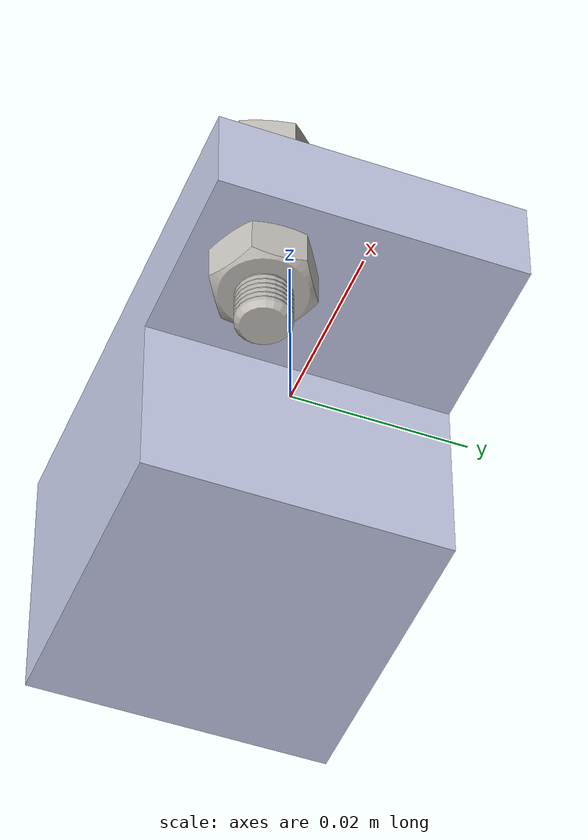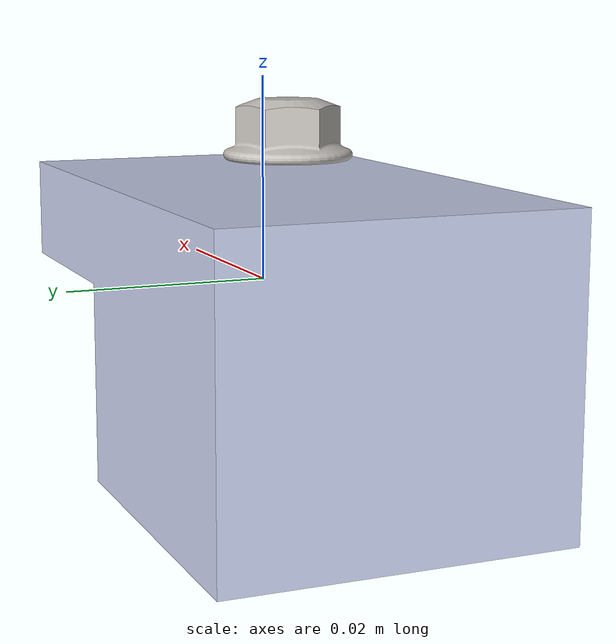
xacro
<?xml version="1.0" encoding="utf-8"?>

<robot     name="battery_pack_description"     xmlns:xacro="http://wiki.ros.org/xacro">

  <link    name="battery_pack_link">
    <inertial>
      <origin
        xyz="-0.009197 -0.0033716 0.00050198"
        rpy="0 0 0" />
      <mass
        value="0.042108" />
      <inertia
        ixx="7.2896E-06"
        ixy="-1.5922E-06"
        ixz="4.7264E-08"
        iyy="1.2235E-05"
        iyz="1.5516E-08"
        izz="1.1494E-05" />
    </inertial>
    <visual>
      <origin
        xyz="0 0 0"
        rpy="0 0 0" />
      <geometry>
                <mesh          filename="package://cai_env/meshes/battery_pack_link.stl" />
      </geometry>
      <material
        name="">
        <color
          rgba="0.79216 0.81961 0.93333 1" />
      </material>
    </visual>
    <collision>
      <origin
        xyz="0 0 0"
        rpy="0 0 0" />
      <geometry>
                <mesh          filename="package://cai_env/meshes/battery_pack_link.stl" />

      </geometry>
    </collision>
  </link>
  <gazebo reference="battery_pack_link">
        <material>Gazebo/Black</material>
   </gazebo>

<!-- luoshuan_Link -->

  <link
    name="luoshuan_Link">
    <inertial>
      <origin
        xyz="-0.00727552152690838 -2.25969003231352E-09 1.26766364072495E-09"
        rpy="0 0 0" />
      <mass
        value="0.00893667958625816" />
      <inertia
        ixx="1.00378421041833E-07"
        ixy="-1.34648613496873E-13"
        ixz="7.18049496355464E-14"
        iyy="5.56080118731557E-07"
        iyz="5.31757414764227E-14"
        izz="5.5607994905101E-07" />
    </inertial>
    <visual>
      <origin
        xyz="0 0 0"
        rpy="0 0 0" />
      <geometry>
        <mesh   filename="package://cai_env/meshes/luoshuan_Link.stl" />

      </geometry>
      <material
        name="">
        <color
          rgba="0.776470588235294 0.756862745098039 0.737254901960784 1" />
      </material>
    </visual>
    <collision>
      <origin
        xyz="0 0 0"
        rpy="0 0 0" />
      <geometry>
                <mesh   filename="package://cai_env/meshes/luoshuan_Link.stl" />
      </geometry>
    </collision>
  </link>

  <joint
    name="luoshuan"
    type="revolute">
    <origin
      xyz="0.016544 -0.0094533 0"
      rpy="1.8719 1.5708 0" />
    <parent
      link="battery_pack_link" />
    <child
      link="luoshuan_Link" />
    <axis
      xyz="1 0 0" />
    <limit
      lower="0"
      upper="0"
      effort="0"
      velocity="0" />
  </joint>

  <gazebo reference="luoshuan_Link">
        <material>Gazebo/Gray</material>
   </gazebo>

  <!-- luomu_Link -->

  <link
    name="luomu_Link">
    <inertial>
      <origin
        xyz="-5.53373788111933E-09 -3.46944695195361E-18 -0.00260060062372346"
        rpy="0 0 0" />
      <mass
        value="0.00265736664598247" />
      <inertia
        ixx="2.79753335550581E-08"
        ixy="5.00698636780671E-14"
        ixz="1.69540697008001E-14"
        iyy="2.79767293623279E-08"
        iyz="-6.75598040645383E-14"
        izz="4.46156091479721E-08" />
    </inertial>
    <visual>
      <origin
        xyz="0 0 0"
        rpy="0 0 0" />
      <geometry>
                      <mesh   filename="package://cai_env/meshes/luomu_Link.stl" />
      </geometry>
      <material
        name="">
        <color
          rgba="0.776470588235294 0.756862745098039 0.737254901960784 1" />
      </material>
    </visual>
    <collision>
      <origin
        xyz="0 0 0"
        rpy="0 0 0" />
      <geometry>
                      <mesh   filename="package://cai_env/meshes/luomu_Link.stl" />
      </geometry>
    </collision>
  </link>
  <joint    name="luomu"
    type="fixed">
    <origin
      xyz="0.016544 -0.0094533 0"
      rpy="0 0 -0.57871" />
    <parent
      link="battery_pack_link" />
    <child
      link="luomu_Link" />
    <axis
      xyz="0 0 1" />
  </joint>

  <gazebo reference="luomu_Link">
        <material>Gazebo/Gray</material>
   </gazebo>

</robot>
